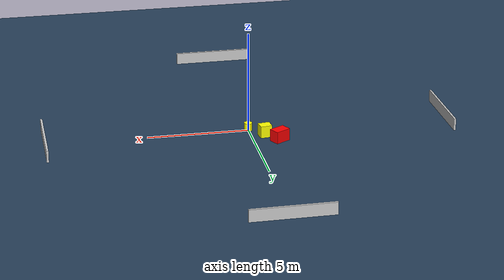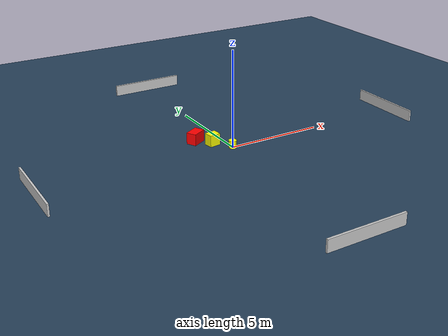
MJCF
<?xml version="1.0" ?>
<mujoco model="generated_environment">
  <option timestep="0.01" integrator="RK4" cone="elliptic"/>
  <default>
    <geom density="1"/>
  </default>
  <asset>
    <texture builtin="gradient" height="3072" name="skybox" rgb1="0.3 0.5 0.7" rgb2="0 0 0" type="skybox" width="512"/>
    <texture builtin="checker" height="300" name="groundplane" rgb1="0.2 0.3 0.4" rgb2="0.1 0.2 0.3" type="2d" width="300"/>
    <material name="groundplane" reflectance="0.2" texrepeat="5 5" texture="groundplane"/>
  </asset>
  <worldbody>
    <light dir="0 0 -1" directional="true" pos="0 0 1.5"/>
    <geom condim="3" friction="0.5 0.005 0.001" material="groundplane" name="floor" pos="0 0 0" size="0 0 0.05" type="plane"/>
    <body name="walls">
      <geom name="wall_1" condim="4" pos="-10.0 0.0 0.3" rgba="0.800000011920929 0.800000011920929 0.800000011920929 1.0" size="0.05 2.0 0.3" type="box"/>
      <geom name="wall_2" condim="4" pos="10.0 0.0 0.3" rgba="0.800000011920929 0.800000011920929 0.800000011920929 1.0" size="0.05 2.0 0.3" type="box"/>
      <geom name="wall_3" condim="4" pos="0.0 -10.0 0.3" rgba="0.800000011920929 0.800000011920929 0.800000011920929 1.0" size="2.0 0.05 0.3" type="box"/>
      <geom name="wall_4" condim="4" pos="0.0 10.0 0.3" rgba="0.800000011920929 0.800000011920929 0.800000011920929 1.0" size="2.0 0.05 0.3" type="box"/>
    </body>
    <body name="robot">
      <joint name="joint_x" type="slide" pos="0 0 0" axis="1 0 0"/>
      <joint name="joint_y" type="slide" pos="0 0 0" axis="0 1 0"/>
      <geom name="robot" type="cylinder" pos="0.0 0.0 0.2" size="0.2 0.2 0.0" mass="5.0" friction="1.0 0.005 0.0001" condim="4" rgba="1.0 1.0 0.0 1.0"/>
    </body>
    <body name="obstacle_1_movable">
      <geom name="obstacle_1_movable" condim="4" pos="-0.6691781720644233 0.8526000453587332 0.3" euler="0 0 7.175789155944314" friction="0.0 0.005 0.001" rgba="1.0 1.0 0.0 1.0" size="0.28978310345323977 0.24041561291348934 0.3" type="box" mass="0.1"/>
      <joint type="free"/>
    </body>
    <body name="obstacle_2_static">
      <geom name="obstacle_2_static" condim="4" pos="-1.266146043598735 1.544132127191896 0.3" euler="0 0 119.09126027998754" friction="0.0 0.005 0.001" rgba="1.0 0.0 0.0 1.0" size="0.26511834638824866 0.39996511383595346 0.3" type="box"/>
    </body>
  </worldbody>
  <actuator>
    <motor name="actuator_x" joint="joint_x" gear="1" ctrlrange="-1 1"/>
    <motor name="actuator_y" joint="joint_y" gear="1" ctrlrange="-1 1"/>
  </actuator>
</mujoco>
